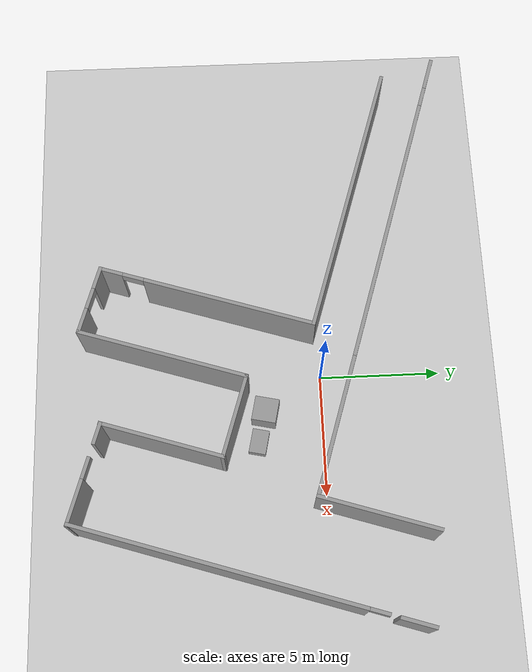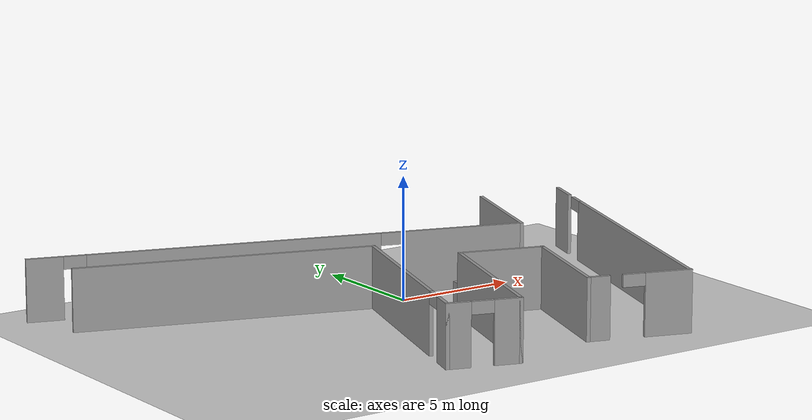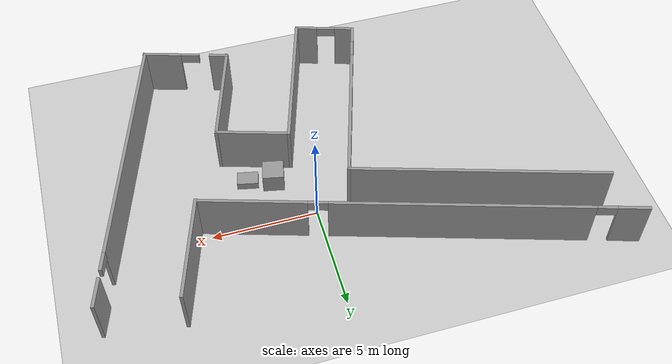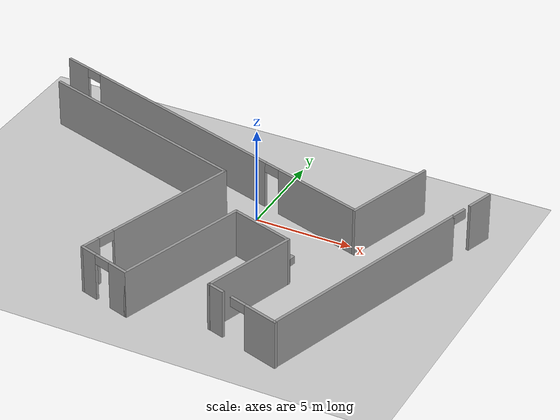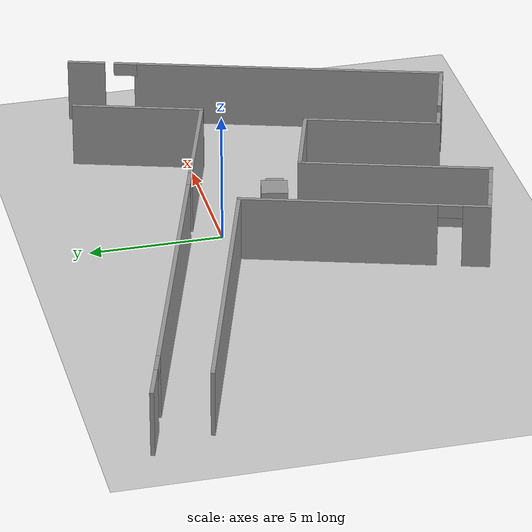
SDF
<sdf version="1.7">
 <world name="default">
  <light name="sun" type="directional">
   <pose>0 0 10 0 -0 0</pose>
   <diffuse>0.8 0.8 0.8 1</diffuse>
   <specular>0.2 0.2 0.2 1</specular>
   <attenuation>
    <range>1000</range>
    <constant>0.9</constant>
    <linear>0.01</linear>
    <quadratic>0.001</quadratic>
   </attenuation>
   <direction>-0.5 0.1 -0.9</direction>
   <spot><inner_angle>0</inner_angle><outer_angle>0</outer_angle><falloff>0</falloff></spot>
  </light>
  <model name="ground_plane">
   <static>1</static>
   <link name="link">
    <collision name="collision">
     <geometry><plane><normal>0 0 1</normal><size>100 100</size></plane></geometry>
     <surface><friction><ode><mu>100</mu><mu2>50</mu2></ode></friction></surface>
    </collision>
    <visual name="visual">
     <cast_shadows>0</cast_shadows>
     <geometry><plane><normal>0 0 1</normal><size>100 100</size></plane></geometry>
     <material>
      <script><uri>file://media/materials/scripts/gazebo.material</uri><name>Gazebo/Grey</name></script>
     </material>
    </visual>
   </link>
  </model>
  <gravity>0 0 -9.8</gravity>
  <magnetic_field>6e-06 2.3e-05 -4.2e-05</magnetic_field>
  <atmosphere type="adiabatic"/>
  <physics type="ode">
   <max_step_size>0.001</max_step_size>
   <real_time_factor>1</real_time_factor>
   <real_time_update_rate>1000</real_time_update_rate>
  </physics>
  <scene><ambient>0.4 0.4 0.4 1</ambient><background>0.7 0.7 0.7 1</background><shadows>1</shadows></scene>
  <spherical_coordinates>
   <surface_model>EARTH_WGS84</surface_model>
   <latitude_deg>0</latitude_deg>
   <longitude_deg>0</longitude_deg>
   <elevation>0</elevation>
   <heading_deg>0</heading_deg>
  </spherical_coordinates>
  <model name="unit_box">
   <link name="link">
    <inertial>
     <mass>1</mass>
     <inertia>
      <ixx>0.166667</ixx>
      <ixy>0</ixy>
      <ixz>0</ixz>
      <iyy>0.166667</iyy>
      <iyz>0</iyz>
      <izz>0.166667</izz>
     </inertia>
    </inertial>
    <visual name="visual">
     <geometry><box><size>1 1 1</size></box></geometry>
     <material>
      <script><name>Gazebo/Grey</name><uri>file://media/materials/scripts/gazebo.material</uri></script>
      <shader type="pixel"><normal_map>__default__</normal_map></shader>
     </material>
    </visual>
    <collision name="collision">
     <geometry><box><size>1 1 1</size></box></geometry>
     <surface>
      <friction>
       <ode><mu>1</mu><mu2>1</mu2><fdir1>0 0 0</fdir1><slip1>0</slip1><slip2>0</slip2></ode>
       <torsional>
        <coefficient>1</coefficient>
        <patch_radius>0</patch_radius>
        <surface_radius>0</surface_radius>
        <use_patch_radius>1</use_patch_radius>
        <ode><slip>0</slip></ode>
       </torsional>
      </friction>
      <bounce><restitution_coefficient>0</restitution_coefficient><threshold>1e+06</threshold></bounce>
      <contact>
       <collide_without_contact>0</collide_without_contact>
       <collide_without_contact_bitmask>1</collide_without_contact_bitmask>
       <collide_bitmask>1</collide_bitmask>
       <ode>
        <soft_cfm>0</soft_cfm>
        <soft_erp>0.2</soft_erp>
        <kp>1e+13</kp>
        <kd>1</kd>
        <max_vel>0.01</max_vel>
        <min_depth>0</min_depth>
       </ode>
       <bullet>
        <split_impulse>1</split_impulse>
        <split_impulse_penetration_threshold>-0.01</split_impulse_penetration_threshold>
        <soft_cfm>0</soft_cfm>
        <soft_erp>0.2</soft_erp>
        <kp>1e+13</kp>
        <kd>1</kd>
       </bullet>
      </contact>
     </surface>
    </collision>
   </link>
   <link name="link_0">
    <inertial>
     <mass>1</mass>
     <inertia>
      <ixx>0.166667</ixx>
      <ixy>0</ixy>
      <ixz>0</ixz>
      <iyy>0.166667</iyy>
      <iyz>0</iyz>
      <izz>0.166667</izz>
     </inertia>
    </inertial>
    <pose>1.22847 -0.046687 -0.30604 1e-05 -0 0</pose>
    <visual name="visual">
     <geometry><box><size>1 0.7 0.4</size></box></geometry>
     <material>
      <lighting>1</lighting>
      <script><uri>file://media/materials/scripts/gazebo.material</uri><name>Gazebo/Grey</name></script>
      <shader type="pixel"><normal_map>__default__</normal_map></shader>
      <ambient>0.3 0.3 0.3 1</ambient>
      <diffuse>0.7 0.7 0.7 1</diffuse>
      <specular>0.01 0.01 0.01 1</specular>
      <emissive>0 0 0 1</emissive>
     </material>
    </visual>
    <collision name="collision">
     <geometry><box><size>1 1 1</size></box></geometry>
     <surface>
      <friction>
       <ode><mu>1</mu><mu2>1</mu2><fdir1>0 0 0</fdir1><slip1>0</slip1><slip2>0</slip2></ode>
       <torsional>
        <coefficient>1</coefficient>
        <patch_radius>0</patch_radius>
        <surface_radius>0</surface_radius>
        <use_patch_radius>1</use_patch_radius>
        <ode><slip>0</slip></ode>
       </torsional>
      </friction>
      <bounce><restitution_coefficient>0</restitution_coefficient><threshold>1e+06</threshold></bounce>
      <contact>
       <collide_without_contact>0</collide_without_contact>
       <collide_without_contact_bitmask>1</collide_without_contact_bitmask>
       <collide_bitmask>1</collide_bitmask>
       <ode>
        <soft_cfm>0</soft_cfm>
        <soft_erp>0.2</soft_erp>
        <kp>1e+13</kp>
        <kd>1</kd>
        <max_vel>0.01</max_vel>
        <min_depth>0</min_depth>
       </ode>
       <bullet>
        <split_impulse>1</split_impulse>
        <split_impulse_penetration_threshold>-0.01</split_impulse_penetration_threshold>
        <soft_cfm>0</soft_cfm>
        <soft_erp>0.2</soft_erp>
        <kp>1e+13</kp>
        <kd>1</kd>
       </bullet>
      </contact>
     </surface>
    </collision>
   </link>
   <static>0</static>
   <pose>1.51667 -2.35847 0.500002 0 4e-06 -0.212659</pose>
  </model>
  <model name="mil_building_2">
   <link name="Wall_10">
    <pose>2.5019 -8.05 0 0 -0 0</pose>
    <visual name="Wall_10_Visual">
     <pose>0 0 1.25 0 -0 0</pose>
     <geometry><box><size>0.15 0.15 2.5</size></box></geometry>
     <material>
      <script><uri>file://media/materials/scripts/gazebo.material</uri><name>Gazebo/Grey</name></script>
      <ambient>1 1 1 1</ambient>
      <shader type="pixel"/>
     </material>
     <meta><layer>0</layer></meta>
    </visual>
    <collision name="Wall_10_Collision">
     <pose>0 0 1.25 0 -0 0</pose>
     <geometry><box><size>0.15 0.15 2.5</size></box></geometry>
     <surface>
      <friction>
       <ode><mu>1</mu><mu2>1</mu2><fdir1>0 0 0</fdir1><slip1>0</slip1><slip2>0</slip2></ode>
       <torsional>
        <coefficient>1</coefficient>
        <patch_radius>0</patch_radius>
        <surface_radius>0</surface_radius>
        <use_patch_radius>1</use_patch_radius>
        <ode><slip>0</slip></ode>
       </torsional>
      </friction>
      <bounce><restitution_coefficient>0</restitution_coefficient><threshold>1e+06</threshold></bounce>
      <contact>
       <collide_without_contact>0</collide_without_contact>
       <collide_without_contact_bitmask>1</collide_without_contact_bitmask>
       <collide_bitmask>1</collide_bitmask>
       <ode>
        <soft_cfm>0</soft_cfm>
        <soft_erp>0.2</soft_erp>
        <kp>1e+13</kp>
        <kd>1</kd>
        <max_vel>0.01</max_vel>
        <min_depth>0</min_depth>
       </ode>
       <bullet>
        <split_impulse>1</split_impulse>
        <split_impulse_penetration_threshold>-0.01</split_impulse_penetration_threshold>
        <soft_cfm>0</soft_cfm>
        <soft_erp>0.2</soft_erp>
        <kp>1e+13</kp>
        <kd>1</kd>
       </bullet>
      </contact>
     </surface>
    </collision>
   </link>
   <link name="Wall_11">
    <pose>2.5019 -4.52011 0 0 -0 1.5708</pose>
    <visual name="Wall_11_Visual">
     <pose>0 0 1.25 0 -0 0</pose>
     <geometry><box><size>7.20977 0.15 2.5</size></box></geometry>
     <material>
      <script><uri>file://media/materials/scripts/gazebo.material</uri><name>Gazebo/Grey</name></script>
      <ambient>0.827451 0.843137 0.811765 1</ambient>
      <shader type="pixel"/>
     </material>
     <meta><layer>0</layer></meta>
    </visual>
    <collision name="Wall_11_Collision">
     <pose>0 0 1.25 0 -0 0</pose>
     <geometry><box><size>7.20977 0.15 2.5</size></box></geometry>
     <surface>
      <friction>
       <ode><mu>1</mu><mu2>1</mu2><fdir1>0 0 0</fdir1><slip1>0</slip1><slip2>0</slip2></ode>
       <torsional>
        <coefficient>1</coefficient>
        <patch_radius>0</patch_radius>
        <surface_radius>0</surface_radius>
        <use_patch_radius>1</use_patch_radius>
        <ode><slip>0</slip></ode>
       </torsional>
      </friction>
      <bounce><restitution_coefficient>0</restitution_coefficient><threshold>1e+06</threshold></bounce>
      <contact>
       <collide_without_contact>0</collide_without_contact>
       <collide_without_contact_bitmask>1</collide_without_contact_bitmask>
       <collide_bitmask>1</collide_bitmask>
       <ode>
        <soft_cfm>0</soft_cfm>
        <soft_erp>0.2</soft_erp>
        <kp>1e+13</kp>
        <kd>1</kd>
        <max_vel>0.01</max_vel>
        <min_depth>0</min_depth>
       </ode>
       <bullet>
        <split_impulse>1</split_impulse>
        <split_impulse_penetration_threshold>-0.01</split_impulse_penetration_threshold>
        <soft_cfm>0</soft_cfm>
        <soft_erp>0.2</soft_erp>
        <kp>1e+13</kp>
        <kd>1</kd>
       </bullet>
      </contact>
     </surface>
    </collision>
   </link>
   <link name="Wall_16">
    <pose>5.88344 -3.4986 0 0 0 -1.5708</pose>
    <inertial>
     <mass>1</mass>
     <inertia><ixx>1</ixx><ixy>0</ixy><ixz>0</ixz><iyy>1</iyy><iyz>0</iyz><izz>1</izz></inertia>
    </inertial>
    <visual name="Wall_16_Visual">
     <pose>0 0 1.25 0 -0 0</pose>
     <geometry><box><size>5.2 0.15 2.5</size></box></geometry>
     <material>
      <script><uri>file://media/materials/scripts/gazebo.material</uri><name>Gazebo/Grey</name></script>
      <ambient>1 1 1 1</ambient>
      <shader type="pixel"><normal_map>__default__</normal_map></shader>
      <diffuse>0.7 0.7 0.7 1</diffuse>
      <specular>0.01 0.01 0.01 1</specular>
      <emissive>0 0 0 1</emissive>
     </material>
     <meta><layer>0</layer></meta>
    </visual>
    <collision name="Wall_16_Collision">
     <pose>0 0 1.25 0 -0 0</pose>
     <geometry><box><size>6.95977 0.15 2.5</size></box></geometry>
     <surface>
      <friction>
       <ode><mu>1</mu><mu2>1</mu2><fdir1>0 0 0</fdir1><slip1>0</slip1><slip2>0</slip2></ode>
       <torsional>
        <coefficient>1</coefficient>
        <patch_radius>0</patch_radius>
        <surface_radius>0</surface_radius>
        <use_patch_radius>1</use_patch_radius>
        <ode><slip>0</slip></ode>
       </torsional>
      </friction>
      <bounce><restitution_coefficient>0</restitution_coefficient><threshold>1e+06</threshold></bounce>
      <contact>
       <collide_without_contact>0</collide_without_contact>
       <collide_without_contact_bitmask>1</collide_without_contact_bitmask>
       <collide_bitmask>1</collide_bitmask>
       <ode>
        <soft_cfm>0</soft_cfm>
        <soft_erp>0.2</soft_erp>
        <kp>1e+13</kp>
        <kd>1</kd>
        <max_vel>0.01</max_vel>
        <min_depth>0</min_depth>
       </ode>
       <bullet>
        <split_impulse>1</split_impulse>
        <split_impulse_penetration_threshold>-0.01</split_impulse_penetration_threshold>
        <soft_cfm>0</soft_cfm>
        <soft_erp>0.2</soft_erp>
        <kp>1e+13</kp>
        <kd>1</kd>
       </bullet>
      </contact>
     </surface>
    </collision>
   </link>
   <link name="Wall_17">
    <pose>7.69168 -6.00945 0 0 -0 0</pose>
    <inertial>
     <mass>1</mass>
     <inertia><ixx>1</ixx><ixy>0</ixy><ixz>0</ixz><iyy>1</iyy><iyz>0</iyz><izz>1</izz></inertia>
    </inertial>
    <visual name="Wall_17_Visual_0">
     <pose>-1.40412 0 1.25 0 -0 0</pose>
     <geometry><box><size>0.94176 0.15 2.5</size></box></geometry>
     <material>
      <script><uri>file://media/materials/scripts/gazebo.material</uri><name>Gazebo/Grey</name></script>
      <ambient>0.827 0.843 0.812 1</ambient>
      <shader type="pixel"><normal_map>__default__</normal_map></shader>
      <diffuse>0.7 0.7 0.7 1</diffuse>
      <specular>0.01 0.01 0.01 1</specular>
      <emissive>0 0 0 1</emissive>
     </material>
     <meta><layer>0</layer></meta>
    </visual>
    <visual name="Wall_17_Visual_1">
     <pose>1.42088 0 1.25 0 -0 0</pose>
     <geometry><box><size>1.90823 0.15 2.5</size></box></geometry>
     <material>
      <script><uri>file://media/materials/scripts/gazebo.material</uri><name>Gazebo/Grey</name></script>
      <ambient>0.827 0.843 0.812 1</ambient>
      <shader type="pixel"><normal_map>__default__</normal_map></shader>
      <diffuse>0.7 0.7 0.7 1</diffuse>
      <specular>0.01 0.01 0.01 1</specular>
      <emissive>0 0 0 1</emissive>
     </material>
     <meta><layer>0</layer></meta>
    </visual>
    <visual name="Wall_17_Visual_2">
     <pose>0.016765 0 2.25 0 -0 0</pose>
     <geometry><box><size>0.9 0.15 0.5</size></box></geometry>
     <material>
      <script><uri>file://media/materials/scripts/gazebo.material</uri><name>Gazebo/Grey</name></script>
      <ambient>0.827 0.843 0.812 1</ambient>
      <shader type="pixel"><normal_map>__default__</normal_map></shader>
      <diffuse>0.7 0.7 0.7 1</diffuse>
      <specular>0.01 0.01 0.01 1</specular>
      <emissive>0 0 0 1</emissive>
     </material>
     <meta><layer>0</layer></meta>
    </visual>
    <collision name="Wall_17_Collision_0">
     <pose>-1.40412 0 1.25 0 -0 0</pose>
     <geometry><box><size>1.94176 0.15 2.5</size></box></geometry>
     <surface>
      <friction>
       <ode><mu>1</mu><mu2>1</mu2><fdir1>0 0 0</fdir1><slip1>0</slip1><slip2>0</slip2></ode>
       <torsional>
        <coefficient>1</coefficient>
        <patch_radius>0</patch_radius>
        <surface_radius>0</surface_radius>
        <use_patch_radius>1</use_patch_radius>
        <ode><slip>0</slip></ode>
       </torsional>
      </friction>
      <bounce><restitution_coefficient>0</restitution_coefficient><threshold>1e+06</threshold></bounce>
      <contact>
       <collide_without_contact>0</collide_without_contact>
       <collide_without_contact_bitmask>1</collide_without_contact_bitmask>
       <collide_bitmask>1</collide_bitmask>
       <ode>
        <soft_cfm>0</soft_cfm>
        <soft_erp>0.2</soft_erp>
        <kp>1e+13</kp>
        <kd>1</kd>
        <max_vel>0.01</max_vel>
        <min_depth>0</min_depth>
       </ode>
       <bullet>
        <split_impulse>1</split_impulse>
        <split_impulse_penetration_threshold>-0.01</split_impulse_penetration_threshold>
        <soft_cfm>0</soft_cfm>
        <soft_erp>0.2</soft_erp>
        <kp>1e+13</kp>
        <kd>1</kd>
       </bullet>
      </contact>
     </surface>
    </collision>
    <collision name="Wall_17_Collision_1">
     <pose>1.42088 0 1.25 0 -0 0</pose>
     <geometry><box><size>1.90823 0.15 2.5</size></box></geometry>
     <surface>
      <friction>
       <ode><mu>1</mu><mu2>1</mu2><fdir1>0 0 0</fdir1><slip1>0</slip1><slip2>0</slip2></ode>
       <torsional>
        <coefficient>1</coefficient>
        <patch_radius>0</patch_radius>
        <surface_radius>0</surface_radius>
        <use_patch_radius>1</use_patch_radius>
        <ode><slip>0</slip></ode>
       </torsional>
      </friction>
      <bounce><restitution_coefficient>0</restitution_coefficient><threshold>1e+06</threshold></bounce>
      <contact>
       <collide_without_contact>0</collide_without_contact>
       <collide_without_contact_bitmask>1</collide_without_contact_bitmask>
       <collide_bitmask>1</collide_bitmask>
       <ode>
        <soft_cfm>0</soft_cfm>
        <soft_erp>0.2</soft_erp>
        <kp>1e+13</kp>
        <kd>1</kd>
        <max_vel>0.01</max_vel>
        <min_depth>0</min_depth>
       </ode>
       <bullet>
        <split_impulse>1</split_impulse>
        <split_impulse_penetration_threshold>-0.01</split_impulse_penetration_threshold>
        <soft_cfm>0</soft_cfm>
        <soft_erp>0.2</soft_erp>
        <kp>1e+13</kp>
        <kd>1</kd>
       </bullet>
      </contact>
     </surface>
    </collision>
    <collision name="Wall_17_Collision_2">
     <pose>0.016765 0 2.25 0 -0 0</pose>
     <geometry><box><size>0.9 0.15 0.5</size></box></geometry>
     <surface>
      <friction>
       <ode><mu>1</mu><mu2>1</mu2><fdir1>0 0 0</fdir1><slip1>0</slip1><slip2>0</slip2></ode>
       <torsional>
        <coefficient>1</coefficient>
        <patch_radius>0</patch_radius>
        <surface_radius>0</surface_radius>
        <use_patch_radius>1</use_patch_radius>
        <ode><slip>0</slip></ode>
       </torsional>
      </friction>
      <bounce><restitution_coefficient>0</restitution_coefficient><threshold>1e+06</threshold></bounce>
      <contact>
       <collide_without_contact>0</collide_without_contact>
       <collide_without_contact_bitmask>1</collide_without_contact_bitmask>
       <collide_bitmask>1</collide_bitmask>
       <ode>
        <soft_cfm>0</soft_cfm>
        <soft_erp>0.2</soft_erp>
        <kp>1e+13</kp>
        <kd>1</kd>
        <max_vel>0.01</max_vel>
        <min_depth>0</min_depth>
       </ode>
       <bullet>
        <split_impulse>1</split_impulse>
        <split_impulse_penetration_threshold>-0.01</split_impulse_penetration_threshold>
        <soft_cfm>0</soft_cfm>
        <soft_erp>0.2</soft_erp>
        <kp>1e+13</kp>
        <kd>1</kd>
       </bullet>
      </contact>
     </surface>
    </collision>
   </link>
   <link name="Wall_18">
    <pose>9.966 1.07393 0 0 -0 1.5708</pose>
    <inertial>
     <mass>1</mass>
     <inertia><ixx>1</ixx><ixy>0</ixy><ixz>0</ixz><iyy>1</iyy><iyz>0</iyz><izz>1</izz></inertia>
    </inertial>
    <visual name="Wall_18_Visual_0">
     <pose>-1.17215 0 1.25 0 -0 0</pose>
     <geometry><box><size>11.9557 0.15 2.5</size></box></geometry>
     <material>
      <script><uri>file://media/materials/scripts/gazebo.material</uri><name>Gazebo/Grey</name></script>
      <ambient>0.827 0.843 0.812 1</ambient>
      <shader type="pixel"><normal_map>__default__</normal_map></shader>
      <diffuse>0.7 0.7 0.7 1</diffuse>
      <specular>0.01 0.01 0.01 1</specular>
      <emissive>0 0 0 1</emissive>
     </material>
     <meta><layer>0</layer></meta>
    </visual>
    <visual name="Wall_18_Visual_1">
     <pose>6.67785 0 1.25 0 -0 0</pose>
     <geometry><box><size>1.4443 0.15 2.5</size></box></geometry>
     <material>
      <script><uri>file://media/materials/scripts/gazebo.material</uri><name>Gazebo/Grey</name></script>
      <ambient>0.827 0.843 0.812 1</ambient>
      <shader type="pixel"><normal_map>__default__</normal_map></shader>
      <diffuse>0.7 0.7 0.7 1</diffuse>
      <specular>0.01 0.01 0.01 1</specular>
      <emissive>0 0 0 1</emissive>
     </material>
     <meta><layer>0</layer></meta>
    </visual>
    <visual name="Wall_18_Visual_2">
     <pose>5.157 0 2.25 0 -0 0</pose>
     <geometry><box><size>0.9 0.15 0.5</size></box></geometry>
     <material>
      <script><uri>file://media/materials/scripts/gazebo.material</uri><name>Gazebo/Grey</name></script>
      <ambient>0.827 0.843 0.812 1</ambient>
      <shader type="pixel"><normal_map>__default__</normal_map></shader>
      <diffuse>0.7 0.7 0.7 1</diffuse>
      <specular>0.01 0.01 0.01 1</specular>
      <emissive>0 0 0 1</emissive>
     </material>
     <meta><layer>0</layer></meta>
    </visual>
    <collision name="Wall_18_Collision_0">
     <pose>-1.17215 0 1.25 0 -0 0</pose>
     <geometry><box><size>13.6557 0.15 2.5</size></box></geometry>
     <surface>
      <friction>
       <ode><mu>1</mu><mu2>1</mu2><fdir1>0 0 0</fdir1><slip1>0</slip1><slip2>0</slip2></ode>
       <torsional>
        <coefficient>1</coefficient>
        <patch_radius>0</patch_radius>
        <surface_radius>0</surface_radius>
        <use_patch_radius>1</use_patch_radius>
        <ode><slip>0</slip></ode>
       </torsional>
      </friction>
      <bounce><restitution_coefficient>0</restitution_coefficient><threshold>1e+06</threshold></bounce>
      <contact>
       <collide_without_contact>0</collide_without_contact>
       <collide_without_contact_bitmask>1</collide_without_contact_bitmask>
       <collide_bitmask>1</collide_bitmask>
       <ode>
        <soft_cfm>0</soft_cfm>
        <soft_erp>0.2</soft_erp>
        <kp>1e+13</kp>
        <kd>1</kd>
        <max_vel>0.01</max_vel>
        <min_depth>0</min_depth>
       </ode>
       <bullet>
        <split_impulse>1</split_impulse>
        <split_impulse_penetration_threshold>-0.01</split_impulse_penetration_threshold>
        <soft_cfm>0</soft_cfm>
        <soft_erp>0.2</soft_erp>
        <kp>1e+13</kp>
        <kd>1</kd>
       </bullet>
      </contact>
     </surface>
    </collision>
    <collision name="Wall_18_Collision_1">
     <pose>7.27785 0 1.25 0 -0 0</pose>
     <geometry><box><size>1.4443 0.15 2.5</size></box></geometry>
     <surface>
      <friction>
       <ode><mu>1</mu><mu2>1</mu2><fdir1>0 0 0</fdir1><slip1>0</slip1><slip2>0</slip2></ode>
       <torsional>
        <coefficient>1</coefficient>
        <patch_radius>0</patch_radius>
        <surface_radius>0</surface_radius>
        <use_patch_radius>1</use_patch_radius>
        <ode><slip>0</slip></ode>
       </torsional>
      </friction>
      <bounce><restitution_coefficient>0</restitution_coefficient><threshold>1e+06</threshold></bounce>
      <contact>
       <collide_without_contact>0</collide_without_contact>
       <collide_without_contact_bitmask>1</collide_without_contact_bitmask>
       <collide_bitmask>1</collide_bitmask>
       <ode>
        <soft_cfm>0</soft_cfm>
        <soft_erp>0.2</soft_erp>
        <kp>1e+13</kp>
        <kd>1</kd>
        <max_vel>0.01</max_vel>
        <min_depth>0</min_depth>
       </ode>
       <bullet>
        <split_impulse>1</split_impulse>
        <split_impulse_penetration_threshold>-0.01</split_impulse_penetration_threshold>
        <soft_cfm>0</soft_cfm>
        <soft_erp>0.2</soft_erp>
        <kp>1e+13</kp>
        <kd>1</kd>
       </bullet>
      </contact>
     </surface>
    </collision>
    <collision name="Wall_18_Collision_2">
     <pose>6.1057 0 2.25 0 -0 0</pose>
     <geometry><box><size>0.9 0.15 0.5</size></box></geometry>
     <surface>
      <friction>
       <ode><mu>1</mu><mu2>1</mu2><fdir1>0 0 0</fdir1><slip1>0</slip1><slip2>0</slip2></ode>
       <torsional>
        <coefficient>1</coefficient>
        <patch_radius>0</patch_radius>
        <surface_radius>0</surface_radius>
        <use_patch_radius>1</use_patch_radius>
        <ode><slip>0</slip></ode>
       </torsional>
      </friction>
      <bounce><restitution_coefficient>0</restitution_coefficient><threshold>1e+06</threshold></bounce>
      <contact>
       <collide_without_contact>0</collide_without_contact>
       <collide_without_contact_bitmask>1</collide_without_contact_bitmask>
       <collide_bitmask>1</collide_bitmask>
       <ode>
        <soft_cfm>0</soft_cfm>
        <soft_erp>0.2</soft_erp>
        <kp>1e+13</kp>
        <kd>1</kd>
        <max_vel>0.01</max_vel>
        <min_depth>0</min_depth>
       </ode>
       <bullet>
        <split_impulse>1</split_impulse>
        <split_impulse_penetration_threshold>-0.01</split_impulse_penetration_threshold>
        <soft_cfm>0</soft_cfm>
        <soft_erp>0.2</soft_erp>
        <kp>1e+13</kp>
        <kd>1</kd>
       </bullet>
      </contact>
     </surface>
    </collision>
   </link>
   <link name="Wall_20">
    <pose>6.40615 5.40255 0 0 -0 1.5708</pose>
    <visual name="Wall_20_Visual">
     <pose>0 0 1.25 0 -0 0</pose>
     <geometry><box><size>5 0.15 2.5</size></box></geometry>
     <material>
      <script><uri>file://media/materials/scripts/gazebo.material</uri><name>Gazebo/Grey</name></script>
      <ambient>0.827451 0.843137 0.811765 1</ambient>
      <shader type="pixel"/>
     </material>
     <meta><layer>0</layer></meta>
    </visual>
    <collision name="Wall_20_Collision">
     <pose>0 0 1.25 0 -0 0</pose>
     <geometry><box><size>5 0.15 2.5</size></box></geometry>
     <surface>
      <friction>
       <ode><mu>1</mu><mu2>1</mu2><fdir1>0 0 0</fdir1><slip1>0</slip1><slip2>0</slip2></ode>
       <torsional>
        <coefficient>1</coefficient>
        <patch_radius>0</patch_radius>
        <surface_radius>0</surface_radius>
        <use_patch_radius>1</use_patch_radius>
        <ode><slip>0</slip></ode>
       </torsional>
      </friction>
      <bounce><restitution_coefficient>0</restitution_coefficient><threshold>1e+06</threshold></bounce>
      <contact>
       <collide_without_contact>0</collide_without_contact>
       <collide_without_contact_bitmask>1</collide_without_contact_bitmask>
       <collide_bitmask>1</collide_bitmask>
       <ode>
        <soft_cfm>0</soft_cfm>
        <soft_erp>0.2</soft_erp>
        <kp>1e+13</kp>
        <kd>1</kd>
        <max_vel>0.01</max_vel>
        <min_depth>0</min_depth>
       </ode>
       <bullet>
        <split_impulse>1</split_impulse>
        <split_impulse_penetration_threshold>-0.01</split_impulse_penetration_threshold>
        <soft_cfm>0</soft_cfm>
        <soft_erp>0.2</soft_erp>
        <kp>1e+13</kp>
        <kd>1</kd>
       </bullet>
      </contact>
     </surface>
    </collision>
   </link>
   <link name="Wall_22">
    <pose>4.20869 -0.990227 0 0 -0 0</pose>
    <inertial>
     <mass>1</mass>
     <inertia><ixx>1</ixx><ixy>0</ixy><ixz>0</ixz><iyy>1</iyy><iyz>0</iyz><izz>1</izz></inertia>
    </inertial>
    <visual name="Wall_22_Visual">
     <pose>0 0 1.25 0 -0 0</pose>
     <geometry><box><size>3.5 0.15 2.5</size></box></geometry>
     <material>
      <script><uri>file://media/materials/scripts/gazebo.material</uri><name>Gazebo/Grey</name></script>
      <ambient>0.827 0.843 0.812 1</ambient>
      <shader type="pixel"><normal_map>__default__</normal_map></shader>
      <diffuse>0.7 0.7 0.7 1</diffuse>
      <specular>0.01 0.01 0.01 1</specular>
      <emissive>0 0 0 1</emissive>
     </material>
     <meta><layer>0</layer></meta>
    </visual>
    <collision name="Wall_22_Collision">
     <pose>0 0 1.25 0 -0 0</pose>
     <geometry><box><size>5.25 0.15 2.5</size></box></geometry>
     <surface>
      <friction>
       <ode><mu>1</mu><mu2>1</mu2><fdir1>0 0 0</fdir1><slip1>0</slip1><slip2>0</slip2></ode>
       <torsional>
        <coefficient>1</coefficient>
        <patch_radius>0</patch_radius>
        <surface_radius>0</surface_radius>
        <use_patch_radius>1</use_patch_radius>
        <ode><slip>0</slip></ode>
       </torsional>
      </friction>
      <bounce><restitution_coefficient>0</restitution_coefficient><threshold>1e+06</threshold></bounce>
      <contact>
       <collide_without_contact>0</collide_without_contact>
       <collide_without_contact_bitmask>1</collide_without_contact_bitmask>
       <collide_bitmask>1</collide_bitmask>
       <ode>
        <soft_cfm>0</soft_cfm>
        <soft_erp>0.2</soft_erp>
        <kp>1e+13</kp>
        <kd>1</kd>
        <max_vel>0.01</max_vel>
        <min_depth>0</min_depth>
       </ode>
       <bullet>
        <split_impulse>1</split_impulse>
        <split_impulse_penetration_threshold>-0.01</split_impulse_penetration_threshold>
        <soft_cfm>0</soft_cfm>
        <soft_erp>0.2</soft_erp>
        <kp>1e+13</kp>
        <kd>1</kd>
       </bullet>
      </contact>
     </surface>
    </collision>
   </link>
   <link name="Wall_3">
    <pose>-3.65906 2.97755 0 0 -0 0</pose>
    <visual name="Wall_3_Visual_0">
     <pose>-9.26763 0 1.25 0 -0 0</pose>
     <geometry><box><size>1.46474 0.15 2.5</size></box></geometry>
     <material>
      <script><uri>file://media/materials/scripts/gazebo.material</uri><name>Gazebo/Grey</name></script>
      <ambient>0.827451 0.843137 0.811765 1</ambient>
      <shader type="pixel"/>
     </material>
     <meta><layer>0</layer></meta>
    </visual>
    <visual name="Wall_3_Visual_1">
     <pose>-1.71657 0 1.25 0 -0 0</pose>
     <geometry><box><size>11.8374 0.15 2.5</size></box></geometry>
     <material>
      <script><uri>file://media/materials/scripts/gazebo.material</uri><name>Gazebo/Grey</name></script>
      <ambient>0.827451 0.843137 0.811765 1</ambient>
      <shader type="pixel"/>
     </material>
     <meta><layer>0</layer></meta>
    </visual>
    <visual name="Wall_3_Visual_2">
     <pose>7.55105 0 1.25 0 -0 0</pose>
     <geometry><box><size>4.89789 0.15 2.5</size></box></geometry>
     <material>
      <script><uri>file://media/materials/scripts/gazebo.material</uri><name>Gazebo/Grey</name></script>
      <ambient>0.827451 0.843137 0.811765 1</ambient>
      <shader type="pixel"/>
     </material>
     <meta><layer>0</layer></meta>
    </visual>
    <visual name="Wall_3_Visual_3">
     <pose>-8.08526 0 2.25 0 -0 0</pose>
     <geometry><box><size>0.9 0.15 0.5</size></box></geometry>
     <material>
      <script><uri>file://media/materials/scripts/gazebo.material</uri><name>Gazebo/Grey</name></script>
      <ambient>0.827451 0.843137 0.811765 1</ambient>
      <shader type="pixel"/>
     </material>
     <meta><layer>0</layer></meta>
    </visual>
    <visual name="Wall_3_Visual_4">
     <pose>4.65211 0 2.25 0 -0 0</pose>
     <geometry><box><size>0.9 0.15 0.5</size></box></geometry>
     <material>
      <script><uri>file://media/materials/scripts/gazebo.material</uri><name>Gazebo/Grey</name></script>
      <ambient>0.827451 0.843137 0.811765 1</ambient>
      <shader type="pixel"/>
     </material>
     <meta><layer>0</layer></meta>
    </visual>
    <collision name="Wall_3_Collision_0">
     <pose>-9.26763 0 1.25 0 -0 0</pose>
     <geometry><box><size>1.46474 0.15 2.5</size></box></geometry>
     <surface>
      <friction>
       <ode><mu>1</mu><mu2>1</mu2><fdir1>0 0 0</fdir1><slip1>0</slip1><slip2>0</slip2></ode>
       <torsional>
        <coefficient>1</coefficient>
        <patch_radius>0</patch_radius>
        <surface_radius>0</surface_radius>
        <use_patch_radius>1</use_patch_radius>
        <ode><slip>0</slip></ode>
       </torsional>
      </friction>
      <bounce><restitution_coefficient>0</restitution_coefficient><threshold>1e+06</threshold></bounce>
      <contact>
       <collide_without_contact>0</collide_without_contact>
       <collide_without_contact_bitmask>1</collide_without_contact_bitmask>
       <collide_bitmask>1</collide_bitmask>
       <ode>
        <soft_cfm>0</soft_cfm>
        <soft_erp>0.2</soft_erp>
        <kp>1e+13</kp>
        <kd>1</kd>
        <max_vel>0.01</max_vel>
        <min_depth>0</min_depth>
       </ode>
       <bullet>
        <split_impulse>1</split_impulse>
        <split_impulse_penetration_threshold>-0.01</split_impulse_penetration_threshold>
        <soft_cfm>0</soft_cfm>
        <soft_erp>0.2</soft_erp>
        <kp>1e+13</kp>
        <kd>1</kd>
       </bullet>
      </contact>
     </surface>
    </collision>
    <collision name="Wall_3_Collision_2">
     <pose>7.55105 0 1.25 0 -0 0</pose>
     <geometry><box><size>4.89789 0.15 2.5</size></box></geometry>
     <surface>
      <friction>
       <ode><mu>1</mu><mu2>1</mu2><fdir1>0 0 0</fdir1><slip1>0</slip1><slip2>0</slip2></ode>
       <torsional>
        <coefficient>1</coefficient>
        <patch_radius>0</patch_radius>
        <surface_radius>0</surface_radius>
        <use_patch_radius>1</use_patch_radius>
        <ode><slip>0</slip></ode>
       </torsional>
      </friction>
      <bounce><restitution_coefficient>0</restitution_coefficient><threshold>1e+06</threshold></bounce>
      <contact>
       <collide_without_contact>0</collide_without_contact>
       <collide_without_contact_bitmask>1</collide_without_contact_bitmask>
       <collide_bitmask>1</collide_bitmask>
       <ode>
        <soft_cfm>0</soft_cfm>
        <soft_erp>0.2</soft_erp>
        <kp>1e+13</kp>
        <kd>1</kd>
        <max_vel>0.01</max_vel>
        <min_depth>0</min_depth>
       </ode>
       <bullet>
        <split_impulse>1</split_impulse>
        <split_impulse_penetration_threshold>-0.01</split_impulse_penetration_threshold>
        <soft_cfm>0</soft_cfm>
        <soft_erp>0.2</soft_erp>
        <kp>1e+13</kp>
        <kd>1</kd>
       </bullet>
      </contact>
     </surface>
    </collision>
    <collision name="Wall_3_Collision_3">
     <pose>-8.08526 0 2.25 0 -0 0</pose>
     <geometry><box><size>0.9 0.15 0.5</size></box></geometry>
     <surface>
      <friction>
       <ode><mu>1</mu><mu2>1</mu2><fdir1>0 0 0</fdir1><slip1>0</slip1><slip2>0</slip2></ode>
       <torsional>
        <coefficient>1</coefficient>
        <patch_radius>0</patch_radius>
        <surface_radius>0</surface_radius>
        <use_patch_radius>1</use_patch_radius>
        <ode><slip>0</slip></ode>
       </torsional>
      </friction>
      <bounce><restitution_coefficient>0</restitution_coefficient><threshold>1e+06</threshold></bounce>
      <contact>
       <collide_without_contact>0</collide_without_contact>
       <collide_without_contact_bitmask>1</collide_without_contact_bitmask>
       <collide_bitmask>1</collide_bitmask>
       <ode>
        <soft_cfm>0</soft_cfm>
        <soft_erp>0.2</soft_erp>
        <kp>1e+13</kp>
        <kd>1</kd>
        <max_vel>0.01</max_vel>
        <min_depth>0</min_depth>
       </ode>
       <bullet>
        <split_impulse>1</split_impulse>
        <split_impulse_penetration_threshold>-0.01</split_impulse_penetration_threshold>
        <soft_cfm>0</soft_cfm>
        <soft_erp>0.2</soft_erp>
        <kp>1e+13</kp>
        <kd>1</kd>
       </bullet>
      </contact>
     </surface>
    </collision>
    <collision name="Wall_3_Collision_1">
     <pose>-1.71657 0 1.25 0 -0 0</pose>
     <geometry><box><size>11.8374 0.15 2.5</size></box></geometry>
     <surface>
      <friction>
       <ode><mu>1</mu><mu2>1</mu2><fdir1>0 0 0</fdir1><slip1>0</slip1><slip2>0</slip2></ode>
       <torsional>
        <coefficient>1</coefficient>
        <patch_radius>0</patch_radius>
        <surface_radius>0</surface_radius>
        <use_patch_radius>1</use_patch_radius>
        <ode><slip>0</slip></ode>
       </torsional>
      </friction>
      <bounce><restitution_coefficient>0</restitution_coefficient><threshold>1e+06</threshold></bounce>
      <contact>
       <collide_without_contact>0</collide_without_contact>
       <collide_without_contact_bitmask>1</collide_without_contact_bitmask>
       <collide_bitmask>1</collide_bitmask>
       <ode>
        <soft_cfm>0</soft_cfm>
        <soft_erp>0.2</soft_erp>
        <kp>1e+13</kp>
        <kd>1</kd>
        <max_vel>0.01</max_vel>
        <min_depth>0</min_depth>
       </ode>
       <bullet>
        <split_impulse>1</split_impulse>
        <split_impulse_penetration_threshold>-0.01</split_impulse_penetration_threshold>
        <soft_cfm>0</soft_cfm>
        <soft_erp>0.2</soft_erp>
        <kp>1e+13</kp>
        <kd>1</kd>
       </bullet>
      </contact>
     </surface>
    </collision>
    <collision name="Wall_3_Collision_4">
     <pose>4.65211 0 2.25 0 -0 0</pose>
     <geometry><box><size>0.9 0.15 0.5</size></box></geometry>
     <surface>
      <friction>
       <ode><mu>1</mu><mu2>1</mu2><fdir1>0 0 0</fdir1><slip1>0</slip1><slip2>0</slip2></ode>
       <torsional>
        <coefficient>1</coefficient>
        <patch_radius>0</patch_radius>
        <surface_radius>0</surface_radius>
        <use_patch_radius>1</use_patch_radius>
        <ode><slip>0</slip></ode>
       </torsional>
      </friction>
      <bounce><restitution_coefficient>0</restitution_coefficient><threshold>1e+06</threshold></bounce>
      <contact>
       <collide_without_contact>0</collide_without_contact>
       <collide_without_contact_bitmask>1</collide_without_contact_bitmask>
       <collide_bitmask>1</collide_bitmask>
       <ode>
        <soft_cfm>0</soft_cfm>
        <soft_erp>0.2</soft_erp>
        <kp>1e+13</kp>
        <kd>1</kd>
        <max_vel>0.01</max_vel>
        <min_depth>0</min_depth>
       </ode>
       <bullet>
        <split_impulse>1</split_impulse>
        <split_impulse_penetration_threshold>-0.01</split_impulse_penetration_threshold>
        <soft_cfm>0</soft_cfm>
        <soft_erp>0.2</soft_erp>
        <kp>1e+13</kp>
        <kd>1</kd>
       </bullet>
      </contact>
     </surface>
    </collision>
   </link>
   <link name="Wall_5">
    <pose>-6.2769 1.04895 0 0 -0 0</pose>
    <visual name="Wall_5_Visual">
     <pose>0 0 1.25 0 -0 0</pose>
     <geometry><box><size>12 0.15 2.5</size></box></geometry>
     <material>
      <script><uri>file://media/materials/scripts/gazebo.material</uri><name>Gazebo/Grey</name></script>
      <ambient>0.827451 0.843137 0.811765 1</ambient>
      <shader type="pixel"/>
     </material>
     <meta><layer>0</layer></meta>
    </visual>
    <collision name="Wall_5_Collision">
     <pose>0 0 1.25 0 -0 0</pose>
     <geometry><box><size>12 0.15 2.5</size></box></geometry>
     <surface>
      <friction>
       <ode><mu>1</mu><mu2>1</mu2><fdir1>0 0 0</fdir1><slip1>0</slip1><slip2>0</slip2></ode>
       <torsional>
        <coefficient>1</coefficient>
        <patch_radius>0</patch_radius>
        <surface_radius>0</surface_radius>
        <use_patch_radius>1</use_patch_radius>
        <ode><slip>0</slip></ode>
       </torsional>
      </friction>
      <bounce><restitution_coefficient>0</restitution_coefficient><threshold>1e+06</threshold></bounce>
      <contact>
       <collide_without_contact>0</collide_without_contact>
       <collide_without_contact_bitmask>1</collide_without_contact_bitmask>
       <collide_bitmask>1</collide_bitmask>
       <ode>
        <soft_cfm>0</soft_cfm>
        <soft_erp>0.2</soft_erp>
        <kp>1e+13</kp>
        <kd>1</kd>
        <max_vel>0.01</max_vel>
        <min_depth>0</min_depth>
       </ode>
       <bullet>
        <split_impulse>1</split_impulse>
        <split_impulse_penetration_threshold>-0.01</split_impulse_penetration_threshold>
        <soft_cfm>0</soft_cfm>
        <soft_erp>0.2</soft_erp>
        <kp>1e+13</kp>
        <kd>1</kd>
       </bullet>
      </contact>
     </surface>
    </collision>
   </link>
   <link name="Wall_7">
    <pose>-0.348098 -3.5 0 0 0 -1.5708</pose>
    <visual name="Wall_7_Visual_0">
     <pose>-0.971314 0 1.25 0 -0 0</pose>
     <geometry><box><size>7.30737 0.15 2.5</size></box></geometry>
     <material>
      <script><uri>file://media/materials/scripts/gazebo.material</uri><name>Gazebo/Grey</name></script>
      <ambient>0.827451 0.843137 0.811765 1</ambient>
      <shader type="pixel"/>
     </material>
     <meta><layer>0</layer></meta>
    </visual>
    <visual name="Wall_7_Visual_1">
     <pose>4.10369 0 1.25 0 -0 0</pose>
     <geometry><box><size>1.04263 0.15 2.5</size></box></geometry>
     <material>
      <script><uri>file://media/materials/scripts/gazebo.material</uri><name>Gazebo/Grey</name></script>
      <ambient>0.827451 0.843137 0.811765 1</ambient>
      <shader type="pixel"/>
     </material>
     <meta><layer>0</layer></meta>
    </visual>
    <visual name="Wall_7_Visual_2">
     <pose>3.13237 0 2.25 0 -0 0</pose>
     <geometry><box><size>0.9 0.15 0.5</size></box></geometry>
     <material>
      <script><uri>file://media/materials/scripts/gazebo.material</uri><name>Gazebo/Grey</name></script>
      <ambient>0.827451 0.843137 0.811765 1</ambient>
      <shader type="pixel"/>
     </material>
     <meta><layer>0</layer></meta>
    </visual>
    <collision name="Wall_7_Collision_0">
     <pose>-0.971314 0 1.25 0 -0 0</pose>
     <geometry><box><size>7.30737 0.15 2.5</size></box></geometry>
     <surface>
      <friction>
       <ode><mu>1</mu><mu2>1</mu2><fdir1>0 0 0</fdir1><slip1>0</slip1><slip2>0</slip2></ode>
       <torsional>
        <coefficient>1</coefficient>
        <patch_radius>0</patch_radius>
        <surface_radius>0</surface_radius>
        <use_patch_radius>1</use_patch_radius>
        <ode><slip>0</slip></ode>
       </torsional>
      </friction>
      <bounce><restitution_coefficient>0</restitution_coefficient><threshold>1e+06</threshold></bounce>
      <contact>
       <collide_without_contact>0</collide_without_contact>
       <collide_without_contact_bitmask>1</collide_without_contact_bitmask>
       <collide_bitmask>1</collide_bitmask>
       <ode>
        <soft_cfm>0</soft_cfm>
        <soft_erp>0.2</soft_erp>
        <kp>1e+13</kp>
        <kd>1</kd>
        <max_vel>0.01</max_vel>
        <min_depth>0</min_depth>
       </ode>
       <bullet>
        <split_impulse>1</split_impulse>
        <split_impulse_penetration_threshold>-0.01</split_impulse_penetration_threshold>
        <soft_cfm>0</soft_cfm>
        <soft_erp>0.2</soft_erp>
        <kp>1e+13</kp>
        <kd>1</kd>
       </bullet>
      </contact>
     </surface>
    </collision>
    <collision name="Wall_7_Collision_1">
     <pose>4.10369 0 1.25 0 -0 0</pose>
     <geometry><box><size>1.04263 0.15 2.5</size></box></geometry>
     <surface>
      <friction>
       <ode><mu>1</mu><mu2>1</mu2><fdir1>0 0 0</fdir1><slip1>0</slip1><slip2>0</slip2></ode>
       <torsional>
        <coefficient>1</coefficient>
        <patch_radius>0</patch_radius>
        <surface_radius>0</surface_radius>
        <use_patch_radius>1</use_patch_radius>
        <ode><slip>0</slip></ode>
       </torsional>
      </friction>
      <bounce><restitution_coefficient>0</restitution_coefficient><threshold>1e+06</threshold></bounce>
      <contact>
       <collide_without_contact>0</collide_without_contact>
       <collide_without_contact_bitmask>1</collide_without_contact_bitmask>
       <collide_bitmask>1</collide_bitmask>
       <ode>
        <soft_cfm>0</soft_cfm>
        <soft_erp>0.2</soft_erp>
        <kp>1e+13</kp>
        <kd>1</kd>
        <max_vel>0.01</max_vel>
        <min_depth>0</min_depth>
       </ode>
       <bullet>
        <split_impulse>1</split_impulse>
        <split_impulse_penetration_threshold>-0.01</split_impulse_penetration_threshold>
        <soft_cfm>0</soft_cfm>
        <soft_erp>0.2</soft_erp>
        <kp>1e+13</kp>
        <kd>1</kd>
       </bullet>
      </contact>
     </surface>
    </collision>
    <collision name="Wall_7_Collision_2">
     <pose>3.13237 0 2.25 0 -0 0</pose>
     <geometry><box><size>0.9 0.15 0.5</size></box></geometry>
     <surface>
      <friction>
       <ode><mu>1</mu><mu2>1</mu2><fdir1>0 0 0</fdir1><slip1>0</slip1><slip2>0</slip2></ode>
       <torsional>
        <coefficient>1</coefficient>
        <patch_radius>0</patch_radius>
        <surface_radius>0</surface_radius>
        <use_patch_radius>1</use_patch_radius>
        <ode><slip>0</slip></ode>
       </torsional>
      </friction>
      <bounce><restitution_coefficient>0</restitution_coefficient><threshold>1e+06</threshold></bounce>
      <contact>
       <collide_without_contact>0</collide_without_contact>
       <collide_without_contact_bitmask>1</collide_without_contact_bitmask>
       <collide_bitmask>1</collide_bitmask>
       <ode>
        <soft_cfm>0</soft_cfm>
        <soft_erp>0.2</soft_erp>
        <kp>1e+13</kp>
        <kd>1</kd>
        <max_vel>0.01</max_vel>
        <min_depth>0</min_depth>
       </ode>
       <bullet>
        <split_impulse>1</split_impulse>
        <split_impulse_penetration_threshold>-0.01</split_impulse_penetration_threshold>
        <soft_cfm>0</soft_cfm>
        <soft_erp>0.2</soft_erp>
        <kp>1e+13</kp>
        <kd>1</kd>
       </bullet>
      </contact>
     </surface>
    </collision>
   </link>
   <link name="Wall_9">
    <pose>1.0769 -8.05 0 0 -0 0</pose>
    <visual name="Wall_9_Visual_0">
     <pose>-1.00827 0 1.25 0 -0 0</pose>
     <geometry><box><size>0.983456 0.15 2.5</size></box></geometry>
     <material>
      <script><uri>file://media/materials/scripts/gazebo.material</uri><name>Gazebo/Grey</name></script>
      <ambient>0.827451 0.843137 0.811765 1</ambient>
      <shader type="pixel"/>
     </material>
     <meta><layer>0</layer></meta>
    </visual>
    <visual name="Wall_9_Visual_1">
     <pose>0.941728 0 1.25 0 -0 0</pose>
     <geometry><box><size>1.11654 0.15 2.5</size></box></geometry>
     <material>
      <script><uri>file://media/materials/scripts/gazebo.material</uri><name>Gazebo/Grey</name></script>
      <ambient>0.827451 0.843137 0.811765 1</ambient>
      <shader type="pixel"/>
     </material>
     <meta><layer>0</layer></meta>
    </visual>
    <visual name="Wall_9_Visual_2">
     <pose>-0.066544 0 2.25 0 -0 0</pose>
     <geometry><box><size>0.9 0.15 0.5</size></box></geometry>
     <material>
      <script><uri>file://media/materials/scripts/gazebo.material</uri><name>Gazebo/Grey</name></script>
      <ambient>0.827451 0.843137 0.811765 1</ambient>
      <shader type="pixel"/>
     </material>
     <meta><layer>0</layer></meta>
    </visual>
    <collision name="Wall_9_Collision_0">
     <pose>-1.00827 0 1.25 0 -0 0</pose>
     <geometry><box><size>0.983456 0.15 2.5</size></box></geometry>
     <surface>
      <friction>
       <ode><mu>1</mu><mu2>1</mu2><fdir1>0 0 0</fdir1><slip1>0</slip1><slip2>0</slip2></ode>
       <torsional>
        <coefficient>1</coefficient>
        <patch_radius>0</patch_radius>
        <surface_radius>0</surface_radius>
        <use_patch_radius>1</use_patch_radius>
        <ode><slip>0</slip></ode>
       </torsional>
      </friction>
      <bounce><restitution_coefficient>0</restitution_coefficient><threshold>1e+06</threshold></bounce>
      <contact>
       <collide_without_contact>0</collide_without_contact>
       <collide_without_contact_bitmask>1</collide_without_contact_bitmask>
       <collide_bitmask>1</collide_bitmask>
       <ode>
        <soft_cfm>0</soft_cfm>
        <soft_erp>0.2</soft_erp>
        <kp>1e+13</kp>
        <kd>1</kd>
        <max_vel>0.01</max_vel>
        <min_depth>0</min_depth>
       </ode>
       <bullet>
        <split_impulse>1</split_impulse>
        <split_impulse_penetration_threshold>-0.01</split_impulse_penetration_threshold>
        <soft_cfm>0</soft_cfm>
        <soft_erp>0.2</soft_erp>
        <kp>1e+13</kp>
        <kd>1</kd>
       </bullet>
      </contact>
     </surface>
    </collision>
    <collision name="Wall_9_Collision_1">
     <pose>0.941728 0 1.25 0 -0 0</pose>
     <geometry><box><size>1.11654 0.15 2.5</size></box></geometry>
     <surface>
      <friction>
       <ode><mu>1</mu><mu2>1</mu2><fdir1>0 0 0</fdir1><slip1>0</slip1><slip2>0</slip2></ode>
       <torsional>
        <coefficient>1</coefficient>
        <patch_radius>0</patch_radius>
        <surface_radius>0</surface_radius>
        <use_patch_radius>1</use_patch_radius>
        <ode><slip>0</slip></ode>
       </torsional>
      </friction>
      <bounce><restitution_coefficient>0</restitution_coefficient><threshold>1e+06</threshold></bounce>
      <contact>
       <collide_without_contact>0</collide_without_contact>
       <collide_without_contact_bitmask>1</collide_without_contact_bitmask>
       <collide_bitmask>1</collide_bitmask>
       <ode>
        <soft_cfm>0</soft_cfm>
        <soft_erp>0.2</soft_erp>
        <kp>1e+13</kp>
        <kd>1</kd>
        <max_vel>0.01</max_vel>
        <min_depth>0</min_depth>
       </ode>
       <bullet>
        <split_impulse>1</split_impulse>
        <split_impulse_penetration_threshold>-0.01</split_impulse_penetration_threshold>
        <soft_cfm>0</soft_cfm>
        <soft_erp>0.2</soft_erp>
        <kp>1e+13</kp>
        <kd>1</kd>
       </bullet>
      </contact>
     </surface>
    </collision>
    <collision name="Wall_9_Collision_2">
     <pose>-0.066544 0 2.25 0 -0 0</pose>
     <geometry><box><size>0.9 0.15 0.5</size></box></geometry>
     <surface>
      <friction>
       <ode><mu>1</mu><mu2>1</mu2><fdir1>0 0 0</fdir1><slip1>0</slip1><slip2>0</slip2></ode>
       <torsional>
        <coefficient>1</coefficient>
        <patch_radius>0</patch_radius>
        <surface_radius>0</surface_radius>
        <use_patch_radius>1</use_patch_radius>
        <ode><slip>0</slip></ode>
       </torsional>
      </friction>
      <bounce><restitution_coefficient>0</restitution_coefficient><threshold>1e+06</threshold></bounce>
      <contact>
       <collide_without_contact>0</collide_without_contact>
       <collide_without_contact_bitmask>1</collide_without_contact_bitmask>
       <collide_bitmask>1</collide_bitmask>
       <ode>
        <soft_cfm>0</soft_cfm>
        <soft_erp>0.2</soft_erp>
        <kp>1e+13</kp>
        <kd>1</kd>
        <max_vel>0.01</max_vel>
        <min_depth>0</min_depth>
       </ode>
       <bullet>
        <split_impulse>1</split_impulse>
        <split_impulse_penetration_threshold>-0.01</split_impulse_penetration_threshold>
        <soft_cfm>0</soft_cfm>
        <soft_erp>0.2</soft_erp>
        <kp>1e+13</kp>
        <kd>1</kd>
       </bullet>
      </contact>
     </surface>
    </collision>
   </link>
   <static>1</static>
   <pose>-1.59306 -1.37439 0 0 0 -0.306193</pose>
  </model>
  <audio><device>default</device></audio>
 </world>
</sdf>
